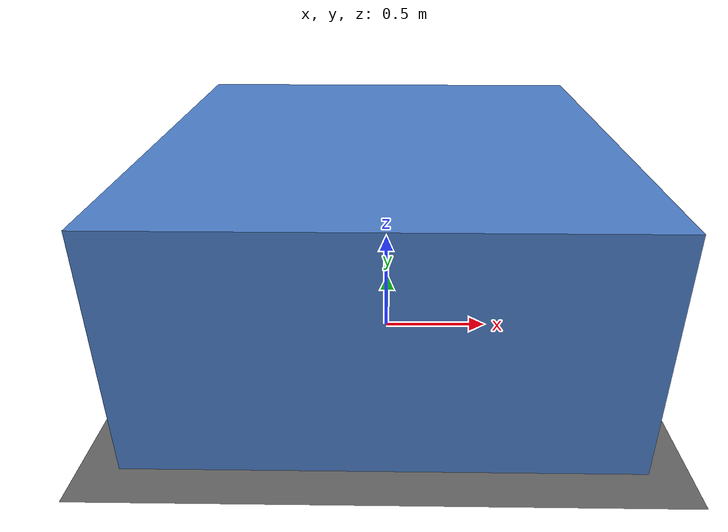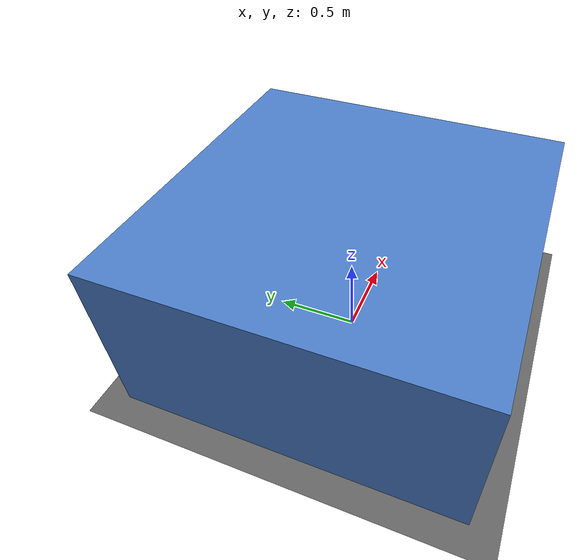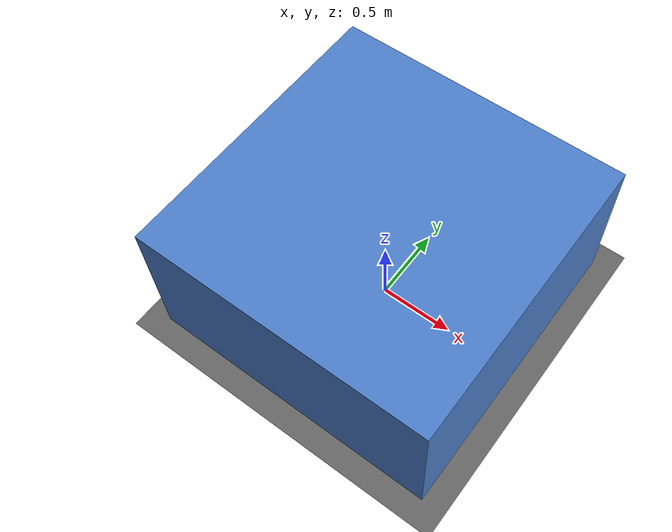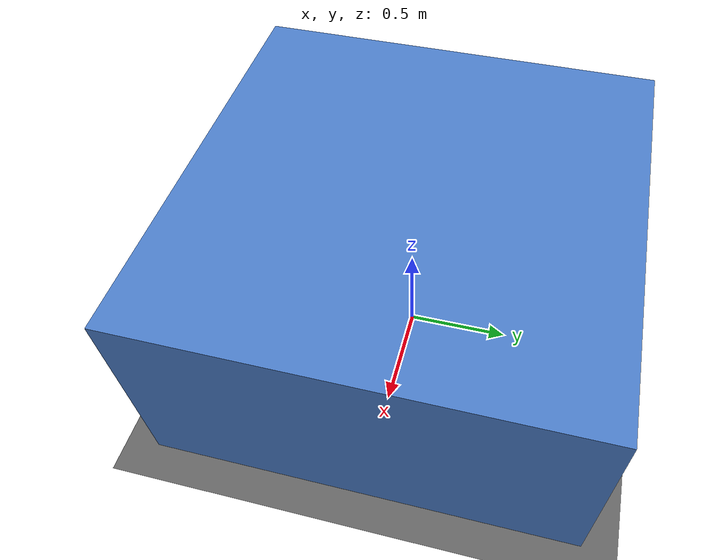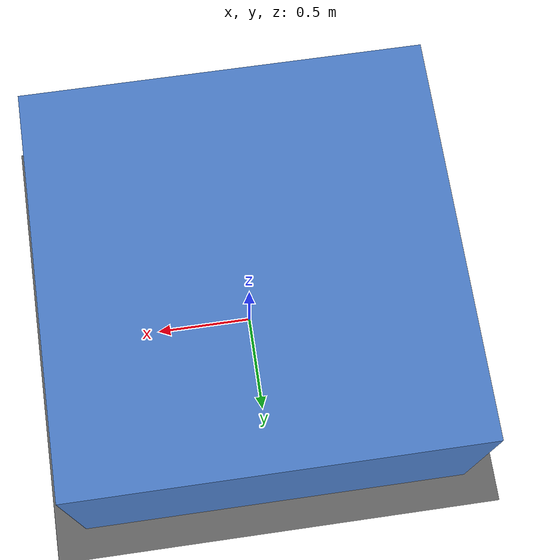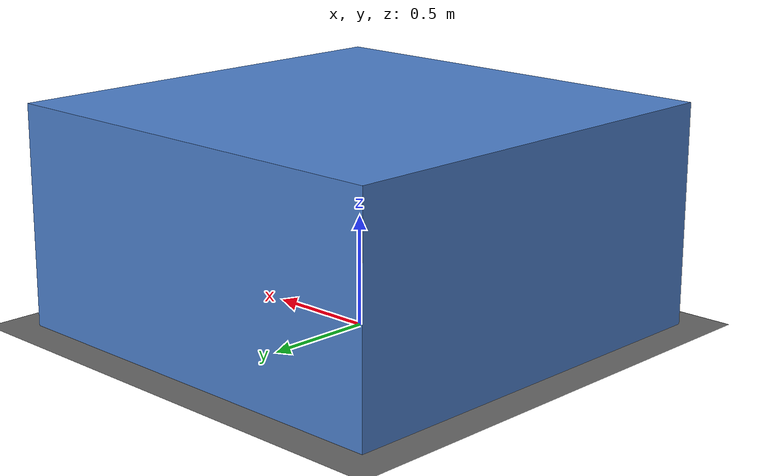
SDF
<?xml version="1.0" ?>
<sdf version="1.8">
  <world name="house_sim">

    <physics name="1ms" type="ignored">
      <max_step_size>0.004</max_step_size>
      <real_time_factor>1.0</real_time_factor>
      <real_time_update_rate>250</real_time_update_rate>
    </physics>

    <plugin filename="gz-sim-physics-system"
            name="gz::sim::systems::Physics"/>
    <plugin filename="gz-sim-user-commands-system"
            name="gz::sim::systems::UserCommands"/>
    <plugin filename="gz-sim-scene-broadcaster-system"
            name="gz::sim::systems::SceneBroadcaster"/>
    <plugin filename="gz-sim-sensors-system"
            name="gz::sim::systems::Sensors">
      <render_engine>ogre2</render_engine>
    </plugin>

    <light type="directional" name="sun">
      <cast_shadows>true</cast_shadows>
      <pose>0 0 10 0 0 0</pose>
      <diffuse>0.85 0.85 0.80 1</diffuse>
      <specular>0.2 0.2 0.2 1</specular>
      <direction>-0.3 0.1 -0.9</direction>
    </light>

    <model name="ground_plane">
      <static>true</static>
      <link name="link">
        <collision name="collision">
          <geometry>
            <plane><normal>0 0 1</normal><size>100 100</size></plane>
          </geometry>
        </collision>
        <visual name="visual">
          <geometry>
            <plane><normal>0 0 1</normal><size>100 100</size></plane>
          </geometry>
          <material>
            <ambient>0.4 0.4 0.4 1</ambient>
            <diffuse>0.4 0.4 0.4 1</diffuse>
          </material>
        </visual>
      </link>
    </model>

    <!-- Run 'make world' to replace this placeholder with a generated house -->
    <model name="placeholder_box">
      <static>true</static>
      <pose>0 0 0.5 0 0 0</pose>
      <link name="link">
        <collision name="collision">
          <geometry><box><size>2 2 1</size></box></geometry>
        </collision>
        <visual name="visual">
          <geometry><box><size>2 2 1</size></box></geometry>
          <material>
            <ambient>0.3 0.5 0.8 1</ambient>
            <diffuse>0.3 0.5 0.8 1</diffuse>
          </material>
        </visual>
      </link>
    </model>

  </world>
</sdf>
